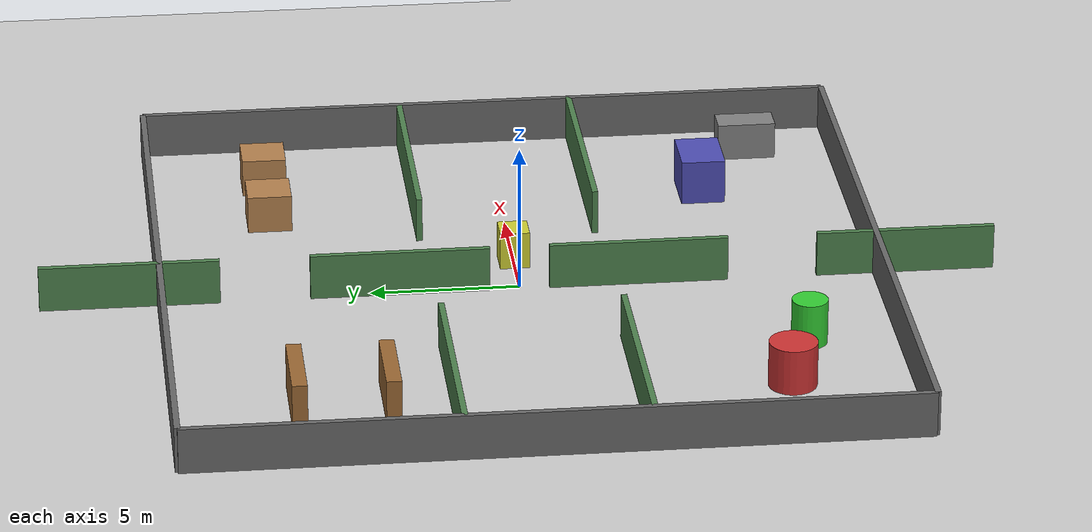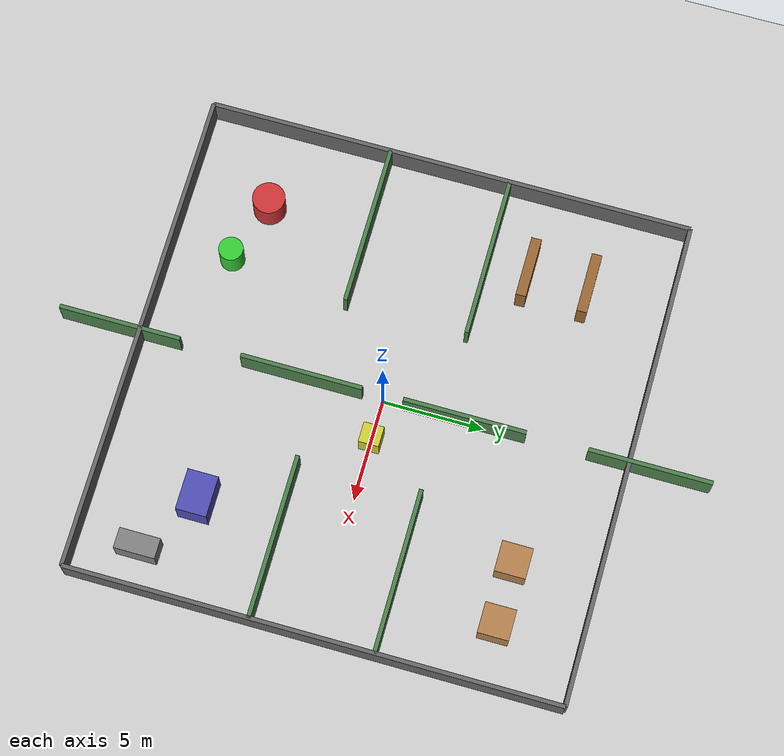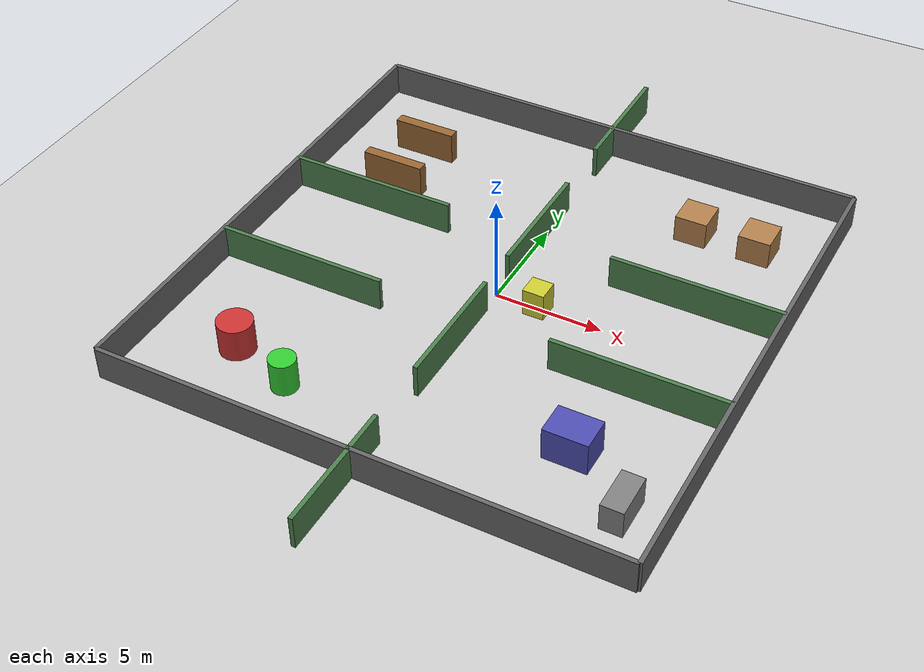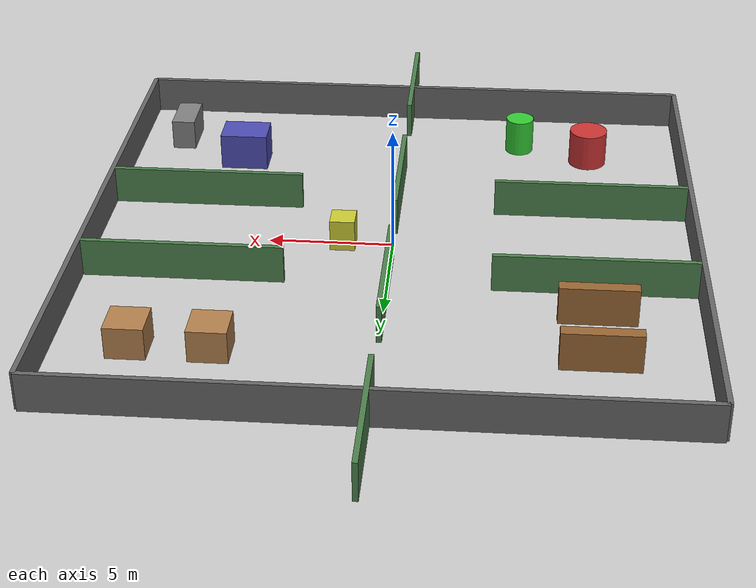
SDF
<?xml version="1.0" ?>
<sdf version="1.6">
  <world name="multi_room_warehouse">
    <!-- Lighting -->
    <include>
      <uri>model://sun</uri>
    </include>

    <!-- Ground Plane -->
    <model name="ground_plane">
      <static>true</static>
      <link name="link">
        <collision name="collision">
          <geometry>
            <plane>
              <normal>0 0 1</normal>
              <size>40 40</size>
            </plane>
          </geometry>
        </collision>
        <visual name="visual">
          <geometry>
            <plane>
              <normal>0 0 1</normal>
              <size>40 40</size>
            </plane>
          </geometry>
          <material>
            <ambient>0.8 0.8 0.8 1</ambient>
            <diffuse>0.8 0.8 0.8 1</diffuse>
            <specular>0.8 0.8 0.8 1</specular>
          </material>
        </visual>
      </link>
    </model>

    <!-- Main Warehouse Walls - Reduced to 24x24m -->
    <model name="outer_walls">
      <static>true</static>
      <pose>0 0 0.5 0 0 0</pose>

      <!-- Wall 1 (North) -->
      <link name="wall_north">
        <collision name="collision">
          <geometry>
            <box>
              <size>24 0.2 2</size>
            </box>
          </geometry>
        </collision>
        <visual name="visual">
          <geometry>
            <box>
              <size>24 0.2 2</size>
            </box>
          </geometry>
          <material>
            <ambient>0.4 0.4 0.4 1</ambient>
            <diffuse>0.4 0.4 0.4 1</diffuse>
            <specular>0.1 0.1 0.1 1</specular>
          </material>
        </visual>
        <pose>0 12 0 0 0 0</pose>
      </link>

      <!-- Wall 2 (South) -->
      <link name="wall_south">
        <collision name="collision">
          <geometry>
            <box>
              <size>24 0.2 2</size>
            </box>
          </geometry>
        </collision>
        <visual name="visual">
          <geometry>
            <box>
              <size>24 0.2 2</size>
            </box>
          </geometry>
          <material>
            <ambient>0.4 0.4 0.4 1</ambient>
            <diffuse>0.4 0.4 0.4 1</diffuse>
            <specular>0.1 0.1 0.1 1</specular>
          </material>
        </visual>
        <pose>0 -12 0 0 0 0</pose>
      </link>

      <!-- Wall 3 (East) -->
      <link name="wall_east">
        <collision name="collision">
          <geometry>
            <box>
              <size>0.2 24 2</size>
            </box>
          </geometry>
        </collision>
        <visual name="visual">
          <geometry>
            <box>
              <size>0.2 24 2</size>
            </box>
          </geometry>
          <material>
            <ambient>0.4 0.4 0.4 1</ambient>
            <diffuse>0.4 0.4 0.4 1</diffuse>
            <specular>0.1 0.1 0.1 1</specular>
          </material>
        </visual>
        <pose>12 0 0 0 0 0</pose>
      </link>

      <!-- Wall 4 (West) -->
      <link name="wall_west">
        <collision name="collision">
          <geometry>
            <box>
              <size>0.2 24 2</size>
            </box>
          </geometry>
        </collision>
        <visual name="visual">
          <geometry>
            <box>
              <size>0.2 24 2</size>
            </box>
          </geometry>
          <material>
            <ambient>0.4 0.4 0.4 1</ambient>
            <diffuse>0.4 0.4 0.4 1</diffuse>
            <specular>0.1 0.1 0.1 1</specular>
          </material>
        </visual>
        <pose>-12 0 0 0 0 0</pose>
      </link>
    </model>

    <!-- Central Corridor (runs horizontally through center) -->
    <model name="corridor_walls">
      <static>true</static>
      <pose>0 0 0.5 0 0 0</pose>

      <!-- North corridor wall (with gaps for doorways) -->
      <link name="corridor_north_left">
        <collision name="collision">
          <geometry>
            <box>
              <size>8 0.2 2</size>
            </box>
          </geometry>
        </collision>
        <visual name="visual">
          <geometry>
            <box>
              <size>8 0.2 2</size>
            </box>
          </geometry>
          <material>
            <ambient>0.3 0.5 0.3 1</ambient>
          </material>
        </visual>
        <pose>-8 3 0 0 0 0</pose>
      </link>

      <link name="corridor_north_right">
        <collision name="collision">
          <geometry>
            <box>
              <size>8 0.2 2</size>
            </box>
          </geometry>
        </collision>
        <visual name="visual">
          <geometry>
            <box>
              <size>8 0.2 2</size>
            </box>
          </geometry>
          <material>
            <ambient>0.3 0.5 0.3 1</ambient>
          </material>
        </visual>
        <pose>8 3 0 0 0 0</pose>
      </link>

      <!-- South corridor wall (with gaps for doorways) -->
      <link name="corridor_south_left">
        <collision name="collision">
          <geometry>
            <box>
              <size>8 0.2 2</size>
            </box>
          </geometry>
        </collision>
        <visual name="visual">
          <geometry>
            <box>
              <size>8 0.2 2</size>
            </box>
          </geometry>
          <material>
            <ambient>0.3 0.5 0.3 1</ambient>
          </material>
        </visual>
        <pose>-8 -3 0 0 0 0</pose>
      </link>

      <link name="corridor_south_right">
        <collision name="collision">
          <geometry>
            <box>
              <size>8 0.2 2</size>
            </box>
          </geometry>
        </collision>
        <visual name="visual">
          <geometry>
            <box>
              <size>8 0.2 2</size>
            </box>
          </geometry>
          <material>
            <ambient>0.3 0.5 0.3 1</ambient>
          </material>
        </visual>
        <pose>8 -3 0 0 0 0</pose>
      </link>

      <!-- Vertical dividers creating 4 rooms with doorways -->
      <link name="divider_vertical_top">
        <collision name="collision">
          <geometry>
            <box>
              <size>0.2 6 2</size>
            </box>
          </geometry>
        </collision>
        <visual name="visual">
          <geometry>
            <box>
              <size>0.2 6 2</size>
            </box>
          </geometry>
          <material>
            <ambient>0.3 0.5 0.3 1</ambient>
          </material>
        </visual>
        <pose>0 13 0 0 0 0</pose>
      </link>

      <link name="divider_vertical_bottom">
        <collision name="collision">
          <geometry>
            <box>
              <size>0.2 6 2</size>
            </box>
          </geometry>
        </collision>
        <visual name="visual">
          <geometry>
            <box>
              <size>0.2 6 2</size>
            </box>
          </geometry>
          <material>
            <ambient>0.3 0.5 0.3 1</ambient>
          </material>
        </visual>
        <pose>0 4 0 0 0 0</pose>
      </link>

      <link name="divider_vertical2_top">
        <collision name="collision">
          <geometry>
            <box>
              <size>0.2 6 2</size>
            </box>
          </geometry>
        </collision>
        <visual name="visual">
          <geometry>
            <box>
              <size>0.2 6 2</size>
            </box>
          </geometry>
          <material>
            <ambient>0.3 0.5 0.3 1</ambient>
          </material>
        </visual>
        <pose>0 -4 0 0 0 0</pose>
      </link>

      <link name="divider_vertical2_bottom">
        <collision name="collision">
          <geometry>
            <box>
              <size>0.2 6 2</size>
            </box>
          </geometry>
        </collision>
        <visual name="visual">
          <geometry>
            <box>
              <size>0.2 6 2</size>
            </box>
          </geometry>
          <material>
            <ambient>0.3 0.5 0.3 1</ambient>
          </material>
        </visual>
        <pose>0 -13 0 0 0 0</pose>
      </link>
    </model>

    <!-- Additional warehouse features - Storage racks and obstacles -->
    <model name="warehouse_objects">
      <static>true</static>
      <pose>0 0 0.5 0 0 0</pose>

      <!-- Storage racks in NW room -->
      <link name="rack1">
        <collision name="collision">
          <geometry>
            <box>
              <size>3 0.5 2</size>
            </box>
          </geometry>
        </collision>
        <visual name="visual">
          <geometry>
            <box>
              <size>3 0.5 2</size>
            </box>
          </geometry>
          <material>
            <ambient>0.6 0.4 0.2 1</ambient>
            <diffuse>0.6 0.4 0.2 1</diffuse>
          </material>
        </visual>
        <pose>-8 8 0 0 0 0</pose>
      </link>

      <link name="rack2">
        <collision name="collision">
          <geometry>
            <box>
              <size>3 0.5 2</size>
            </box>
          </geometry>
        </collision>
        <visual name="visual">
          <geometry>
            <box>
              <size>3 0.5 2</size>
            </box>
          </geometry>
          <material>
            <ambient>0.6 0.4 0.2 1</ambient>
            <diffuse>0.6 0.4 0.2 1</diffuse>
          </material>
        </visual>
        <pose>-8 5 0 0 0 0</pose>
      </link>

      <!-- Boxes in NE room -->
      <link name="box1">
        <collision name="collision">
          <geometry>
            <box>
              <size>1.5 1.5 1.5</size>
            </box>
          </geometry>
        </collision>
        <visual name="visual">
          <geometry>
            <box>
              <size>1.5 1.5 1.5</size>
            </box>
          </geometry>
          <material>
            <ambient>0.7 0.5 0.3 1</ambient>
            <diffuse>0.7 0.5 0.3 1</diffuse>
          </material>
        </visual>
        <pose>6 8 0 0 0 0</pose>
      </link>

      <link name="box2">
        <collision name="collision">
          <geometry>
            <box>
              <size>1.5 1.5 1.5</size>
            </box>
          </geometry>
        </collision>
        <visual name="visual">
          <geometry>
            <box>
              <size>1.5 1.5 1.5</size>
            </box>
          </geometry>
          <material>
            <ambient>0.7 0.5 0.3 1</ambient>
            <diffuse>0.7 0.5 0.3 1</diffuse>
          </material>
        </visual>
        <pose>9 8 0 0 0 0</pose>
      </link>

      <!-- Cylinders in SW room -->
      <link name="cylinder1">
        <collision name="collision">
          <geometry>
            <cylinder>
              <radius>0.8</radius>
              <length>2.0</length>
            </cylinder>
          </geometry>
        </collision>
        <visual name="visual">
          <geometry>
            <cylinder>
              <radius>0.8</radius>
              <length>2.0</length>
            </cylinder>
          </geometry>
          <material>
            <ambient>0.8 0.2 0.2 1</ambient>
            <diffuse>0.8 0.2 0.2 1</diffuse>
          </material>
        </visual>
        <pose>-8 -8 0 0 0 0</pose>
      </link>

      <link name="cylinder2">
        <collision name="collision">
          <geometry>
            <cylinder>
              <radius>0.6</radius>
              <length>2.0</length>
            </cylinder>
          </geometry>
        </collision>
        <visual name="visual">
          <geometry>
            <cylinder>
              <radius>0.6</radius>
              <length>2.0</length>
            </cylinder>
          </geometry>
          <material>
            <ambient>0.2 0.8 0.2 1</ambient>
            <diffuse>0.2 0.8 0.2 1</diffuse>
          </material>
        </visual>
        <pose>-5 -9 0 0 0 0</pose>
      </link>

      <!-- Equipment in SE room -->
      <link name="equipment1">
        <collision name="collision">
          <geometry>
            <box>
              <size>2 1.5 2</size>
            </box>
          </geometry>
        </collision>
        <visual name="visual">
          <geometry>
            <box>
              <size>2 1.5 2</size>
            </box>
          </geometry>
          <material>
            <ambient>0.3 0.3 0.7 1</ambient>
            <diffuse>0.3 0.3 0.7 1</diffuse>
          </material>
        </visual>
        <pose>7 -7 0 0 0 0</pose>
      </link>

      <link name="equipment2">
        <collision name="collision">
          <geometry>
            <box>
              <size>1 2 1.5</size>
            </box>
          </geometry>
        </collision>
        <visual name="visual">
          <geometry>
            <box>
              <size>1 2 1.5</size>
            </box>
          </geometry>
          <material>
            <ambient>0.5 0.5 0.5 1</ambient>
            <diffuse>0.5 0.5 0.5 1</diffuse>
          </material>
        </visual>
        <pose>10 -9 0 0 0 0</pose>
      </link>

      <!-- Central corridor obstacles -->
      <link name="corridor_box">
        <collision name="collision">
          <geometry>
            <box>
              <size>1 1 1.5</size>
            </box>
          </geometry>
        </collision>
        <visual name="visual">
          <geometry>
            <box>
              <size>1 1 1.5</size>
            </box>
          </geometry>
          <material>
            <ambient>0.8 0.8 0.2 1</ambient>
            <diffuse>0.8 0.8 0.2 1</diffuse>
          </material>
        </visual>
        <pose>2 0 0 0 0 0</pose>
      </link>
    </model>

    <!-- Physics parameters -->
    <physics type="ode">
      <max_step_size>0.01</max_step_size>
      <real_time_factor>1.0</real_time_factor>
      <real_time_update_rate>100</real_time_update_rate>
    </physics>

    <!-- GUI -->
    <gui fullscreen="0">
      <camera name="user_camera">
        <pose>30 30 30 0 0.6 -2.0</pose>
        <view_controller>orbit</view_controller>
      </camera>
    </gui>
  </world>
</sdf>
